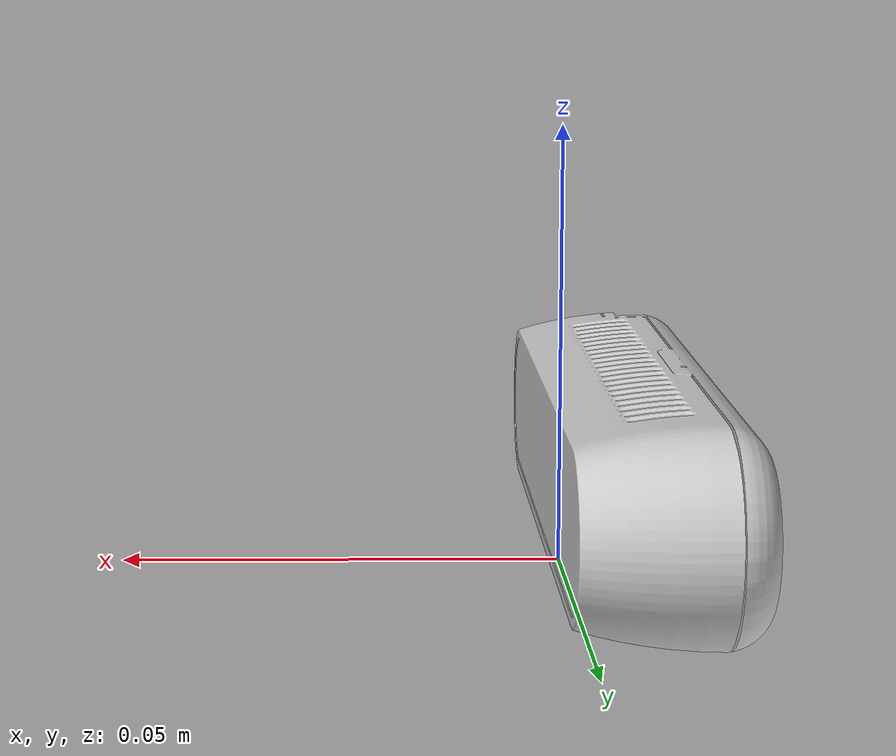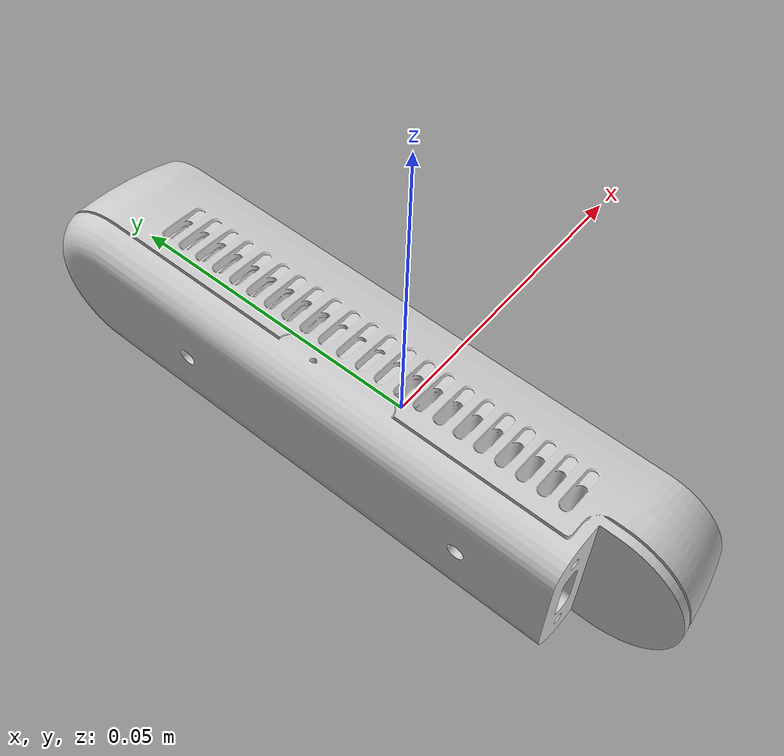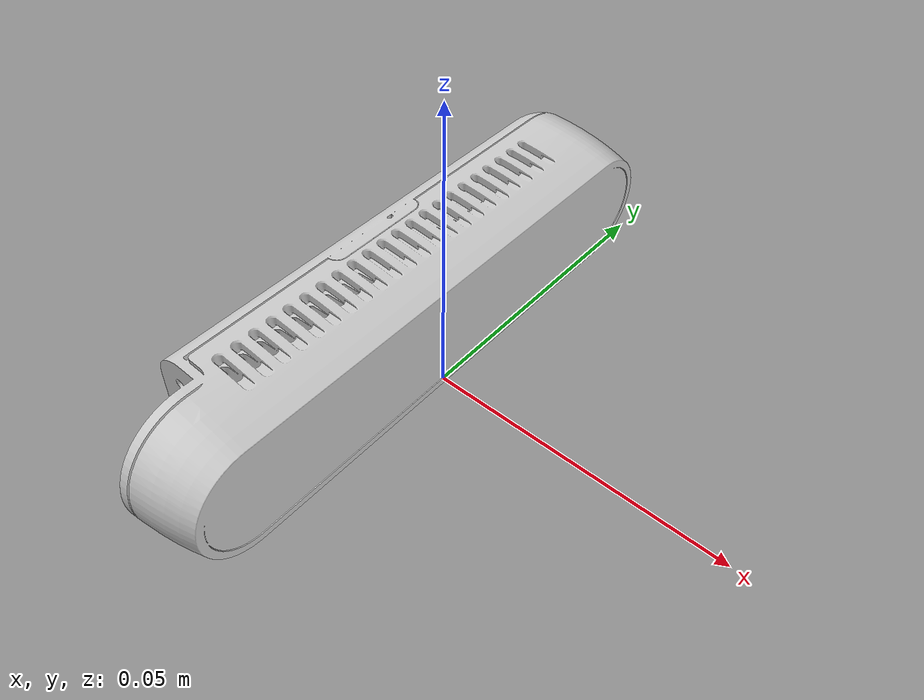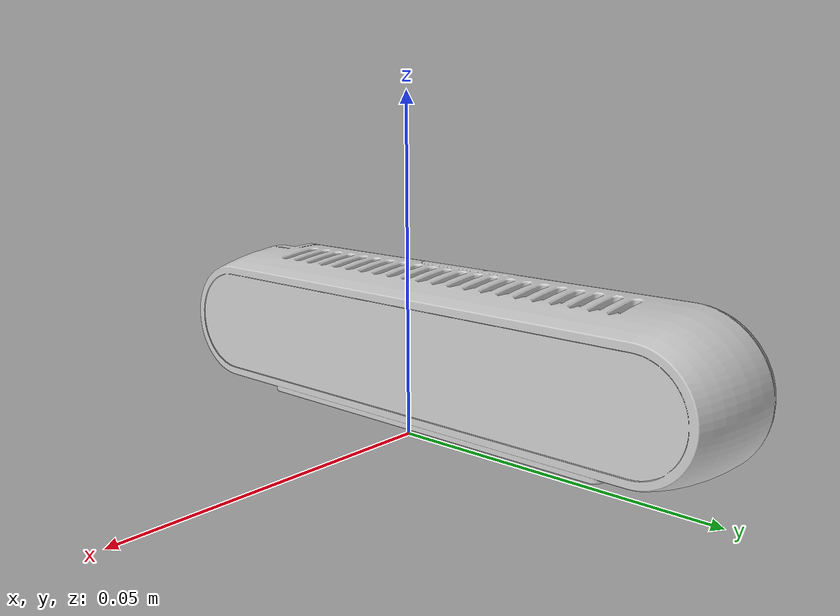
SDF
<?xml version="1.0" ?>
<sdf version="1.5">
	<model name="intel_realsense_d415_sensor">
		<static>1</static>
		<pose>0 0 0.0115 0 0 0</pose>
		<link name="link">
			<inertial>
				<mass>0.1</mass>
			</inertial>
			<visual name="visual">
				<transparency>0</transparency>
				<geometry>
					<mesh>
						<uri>model://intel_realsense_d415_sensor/meshes/intel_realsense_d415_sensor.stl</uri>
					</mesh>
				</geometry>
				<material>
					<script>
						<name>SensorPlacementOptimization/LightGray</name>
						<uri>file://materials/sensor_placement_optimization.material</uri>
					</script>
				</material>
			</visual>
			<sensor name="sensor" type="depth">
				<update_rate>90</update_rate>
				<camera>
					<horizontal_fov>1.106539</horizontal_fov>
					<image>
						<width>1280</width>
						<height>720</height>
						<format>B8G8R8</format>
					</image>
					<clip>
						<near>0.16</near>
						<far>10.0</far>
					</clip>
				</camera>
			</sensor>
		</link>
	</model>
</sdf>
